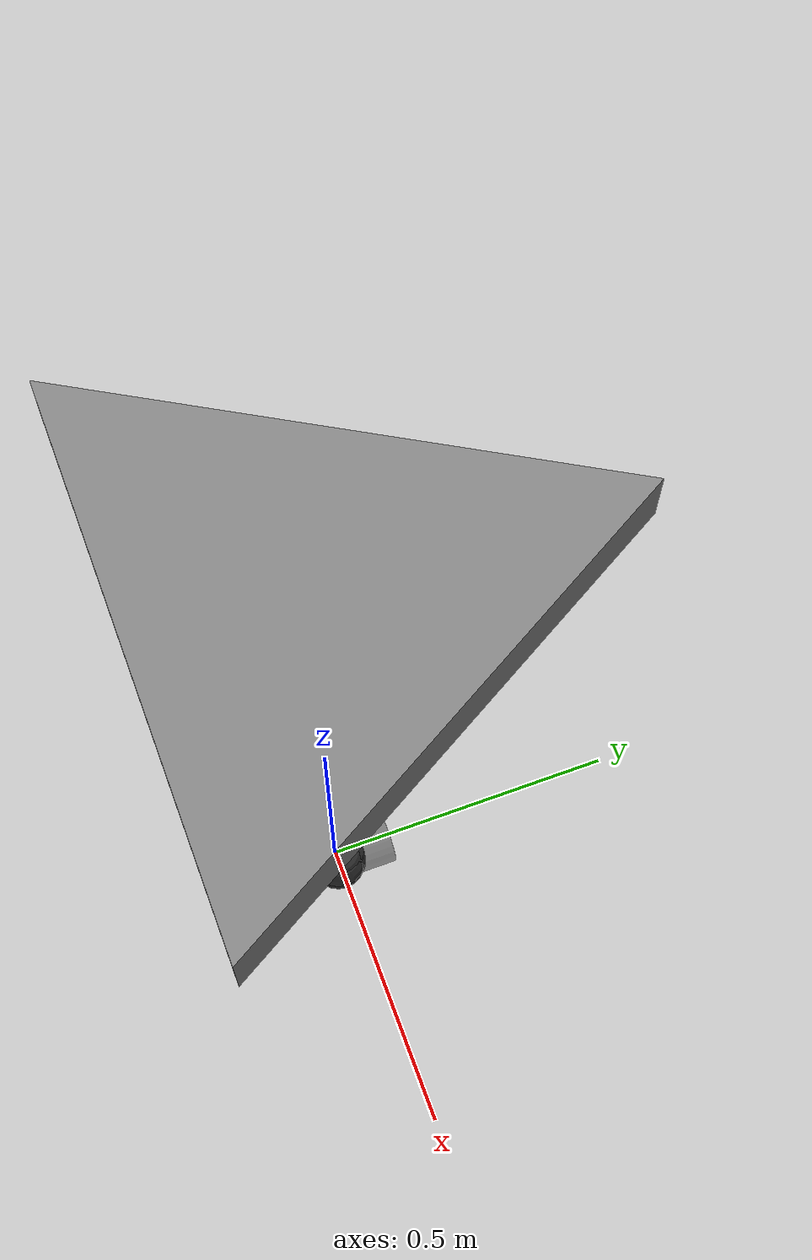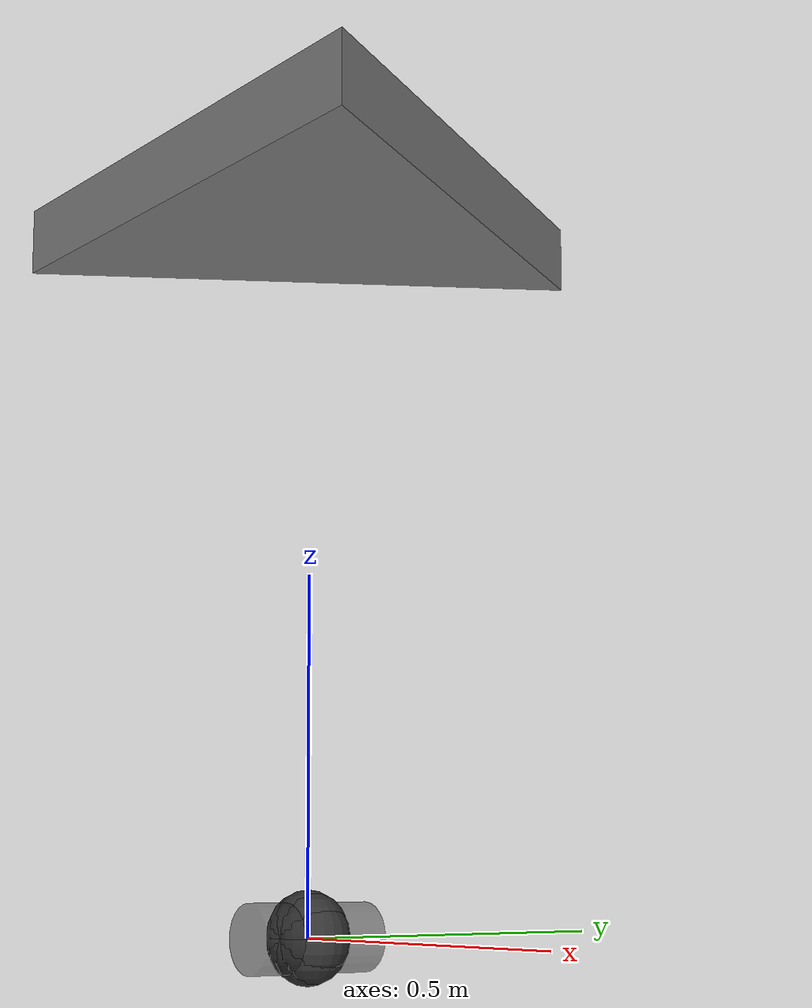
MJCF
<?xml version="1.0" encoding="utf-8"?>
<mujoco model="triangular_base">

    <!-- set some defaults for units and lighting -->
    <compiler angle="degree" meshdir="./stl_exports/"/>

	<option timestep="0.001"/>

    <!-- import our stl files -->
    <asset>
        <mesh name="baseplate" file="baseplate_robot.stl" />
        <mesh name="wheel" file="wheel_for_mujoco.stl" />
    </asset>

    <!-- define our robot model -->
    <worldbody>
        <!-- set up a light pointing down on the robot -->
        <light directional="true" pos="-0.5 0.5 3" dir="0 0 -1" />

        <!-- add a floor so we don't stare off into the abyss -->
        <geom name="floor" pos="0 0 2" size="50 50 50" type="plane" rgba="1 0.83 0.61 0.5"/>

        <!-- start building our model -->
        <body name="base" pos="0 0 0">
	    <joint name="joint_base" type="free" axis="0 0 0"/>
            <geom name="baseplate_robot" type="mesh" mesh="baseplate" pos="0 0 1"/>
            <inertial pos="0 0 1" mass="150" diaginertia="1 1 1"/>

		<body name="omni_wheel_intermediate_link" pos="0 0 0">
		    <inertial pos="0 0 0" quat="0.707107 0 0 0.707107" mass="6.5" diaginertia="0.0524193 0.0303095 0.0303095" />
		    <joint name="R1_omni_wheel_rolling_joint" pos="0 0 0" axis="0 1 0" />
		    <geom size="0.048 0.096" quat="0.707107 0.707107 0 0" type="cylinder" rgba="0.2 0.2 0.2 0.5" contype="1" conaffinity="0"/>

		    <body name="omni_roller_0_link" pos="0.016067489524842053 0.0 -0.005220643815637086">
			<joint name="omni_slipping_0_joint" type="hinge" pos="0 0 0" axis="-0.0033925800054340066 0.096 -0.010441287631274172" damping="0.1" limited="false" actuatorfrclimited="false"/>
			<inertial pos="0 0 0" quat="0.711549 0.711549 0 0 " mass="0.001" diaginertia="0.00001 0.00001 0.00001" />
			<geom size="0.048" quat="1 0 0 0" type="sphere" rgba="0.2 0.2 0.2 1" contype="1" conaffinity="0"/>
		    </body>

		    <body name="omni_roller_1_link" pos="0.016067489524842053 0.0 0.005220643815637084">
			<joint name="omni_slipping_1_joint" type="hinge" pos="0 0 0" axis="0.003392580005434005 0.096 -0.010441287631274169" damping="0.1" limited="false" actuatorfrclimited="false"/>
			<inertial pos="0 0 0" quat="0.711549 0.711549 0 0 " mass="0.001" diaginertia="0.00001 0.00001 0.00001" />
			<geom size="0.048" quat="1 0 0 0" type="sphere" rgba="0.2 0.2 0.2 1" contype="1" conaffinity="0"/>
		    </body>

		    <body name="omni_roller_2_link" pos="0.009930254640235288 0.0 0.013667822952494826">
			<joint name="omni_slipping_2_joint" type="hinge" pos="0 0 0" axis="0.008881889763779528 0.096 -0.006453070642441314" damping="0.1" limited="false" actuatorfrclimited="false"/>
			<inertial pos="0 0 0" quat="0.711549 0.711549 0 0 " mass="0.001" diaginertia="0.00001 0.00001 0.00001" />
			<geom size="0.048" quat="1 0 0 0" type="sphere" rgba="0.2 0.2 0.2 1" contype="1" conaffinity="0"/>
		    </body>

		    <body name="omni_roller_3_link" pos="8.673617379884035e-19 0.0 0.016894358273715486">
			<joint name="omni_slipping_3_joint" type="hinge" pos="0 0 0" axis="0.010978619516691044 0.096 -3.469446951953614e-18" damping="0.1" limited="false" actuatorfrclimited="false"/>
			<inertial pos="0 0 0" quat="0.711549 0.711549 0 0 " mass="0.001" diaginertia="0.00001 0.00001 0.00001" />
			<geom size="0.048" quat="1 0 0 0" type="sphere" rgba="0.2 0.2 0.2 1" contype="1" conaffinity="0"/>
		    </body>

		    <body name="omni_roller_4_link" pos="-0.009930254640235284 0.0 0.01366782295249483">
			<joint name="omni_slipping_4_joint" type="hinge" pos="0 0 0" axis="0.008881889763779528 0.096 0.006453070642441315" damping="0.1" limited="false" actuatorfrclimited="false"/>
			<inertial pos="0 0 0" quat="0.711549 0.711549 0 0 " mass="0.001" diaginertia="0.00001 0.00001 0.00001" />
			<geom size="0.048" quat="1 0 0 0" type="sphere" rgba="0.2 0.2 0.2 1" contype="1" conaffinity="0"/>
		    </body>

		    <body name="omni_roller_5_link" pos="-0.016067489524842053 0.0 0.005220643815637087">
			<joint name="omni_slipping_5_joint" type="hinge" pos="0 0 0" axis="0.0033925800054340066 0.096 0.010441287631274169" damping="0.1" limited="false" actuatorfrclimited="false"/>
			<inertial pos="0 0 0" quat="0.711549 0.711549 0 0 " mass="0.001" diaginertia="0.00001 0.00001 0.00001" />
			<geom size="0.048" quat="1 0 0 0" type="sphere" rgba="0.2 0.2 0.2 1" contype="1" conaffinity="0"/>
		    </body>

		    <body name="omni_roller_6_link" pos="-0.016067489524842056 0.0 -0.005220643815637083">
			<joint name="omni_slipping_6_joint" type="hinge" pos="0 0 0" axis="-0.003392580005434003 0.096 0.010441287631274169" damping="0.1" limited="false" actuatorfrclimited="false"/>
			<inertial pos="0 0 0" quat="0.711549 0.711549 0 0 " mass="0.001" diaginertia="0.00001 0.00001 0.00001" />
			<geom size="0.048" quat="1 0 0 0" type="sphere" rgba="0.2 0.2 0.2 1" contype="1" conaffinity="0"/>
		    </body>

		    <body name="omni_roller_7_link" pos="-0.009930254640235288 0.0 -0.013667822952494826">
			<joint name="omni_slipping_7_joint" type="hinge" pos="0 0 0" axis="-0.008881889763779526 0.096 0.006453070642441315" damping="0.1" limited="false" actuatorfrclimited="false"/>
			<inertial pos="0 0 0" quat="0.711549 0.711549 0 0 " mass="0.001" diaginertia="0.00001 0.00001 0.00001" />
			<geom size="0.048" quat="1 0 0 0" type="sphere" rgba="0.2 0.2 0.2 1" contype="1" conaffinity="0"/>
		    </body>

		    <body name="omni_roller_8_link" pos="-3.469446951953614e-18 0.0 -0.016894358273715486">
			<joint name="omni_slipping_8_joint" type="hinge" pos="0 0 0" axis="-0.010978619516691046 0.096 3.469446951953614e-18" damping="0.1" limited="false" actuatorfrclimited="false"/>
			<inertial pos="0 0 0" quat="0.711549 0.711549 0 0 " mass="0.001" diaginertia="0.00001 0.00001 0.00001" />
			<geom size="0.048" quat="1 0 0 0" type="sphere" rgba="0.2 0.2 0.2 1" contype="1" conaffinity="0"/>
		    </body>

		    <body name="omni_roller_9_link" pos="0.009930254640235284 0.0 -0.01366782295249483">
			<joint name="omni_slipping_9_joint" type="hinge" pos="0 0 0" axis="-0.00888188976377953 0.096 -0.006453070642441314" damping="0.1" limited="false" actuatorfrclimited="false"/>
			<inertial pos="0 0 0" quat="0.711549 0.711549 0 0 " mass="0.001" diaginertia="0.00001 0.00001 0.00001" />
			<geom size="0.048" quat="1 0 0 0" type="sphere" rgba="0.2 0.2 0.2 1" contype="1" conaffinity="0"/>
		    </body>
		</body>

        </body>
    </worldbody>

</mujoco>
